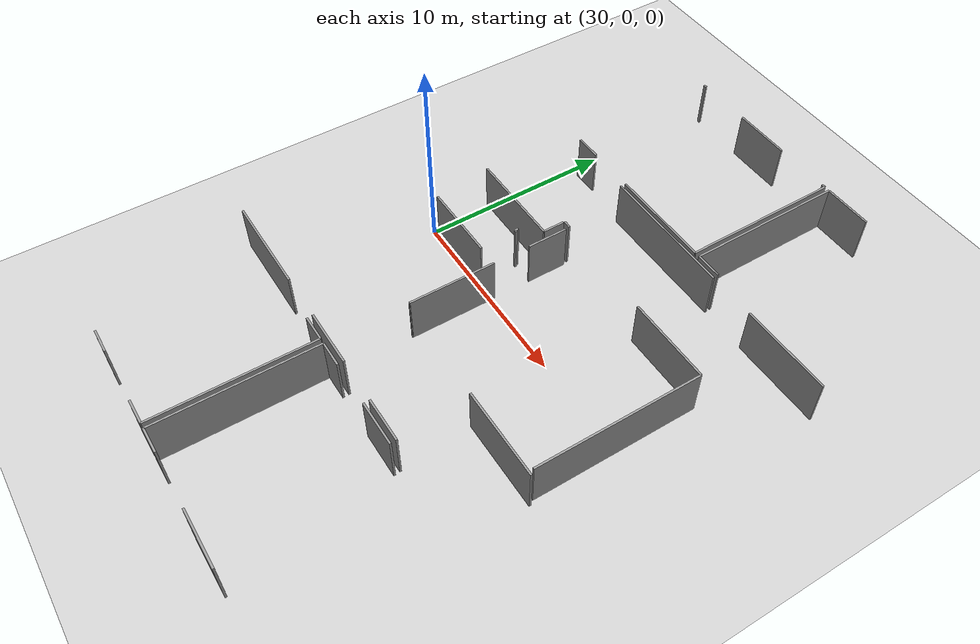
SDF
<sdf version="1.6">
 <world name="default">
  <model name="ground_plane">
   <static>1</static>
   <link name="link">
    <collision name="collision">
     <geometry><plane><normal>0 0 1</normal><size>100 100</size></plane></geometry>
     <surface><friction><ode><mu>100</mu><mu2>50</mu2></ode></friction></surface>
    </collision>
    <visual name="visual">
     <cast_shadows>0</cast_shadows>
     <geometry><plane><normal>0 0 1</normal><size>100 100</size></plane></geometry>
     <material>
      <script><uri>file://media/materials/scripts/gazebo.material</uri><name>Gazebo/Grey</name></script>
     </material>
    </visual>
   </link>
  </model>
  <model name="50041174">
   <static>1</static>
   <link name="Wall_69">
    <collision name="Wall_69_Collision">
     <geometry><box><size>1.36951002793 0.1 2.5</size></box></geometry>
     <pose>0.684755013963 0 1.25 0 0 0</pose>
    </collision>
    <visual name="Wall_69_Visual">
     <pose>0.684755013963 0 1.25 0 0 0</pose>
     <geometry><box><size>1.36951002793 0.1 2.5</size></box></geometry>
     <material>
      <script><uri>file://media/materials/scripts/gazebo.material</uri><name>Gazebo/Grey</name></script>
      <ambient>1 1 1 1</ambient>
     </material>
    </visual>
    <pose>100.085554709 -25.3128966743 0 0 0 0.0</pose>
   </link>
   <link name="Wall_70">
    <collision name="Wall_70_Collision">
     <geometry><box><size>8.2129982229 0.1 2.5</size></box></geometry>
     <pose>4.10649911145 0 1.25 0 0 0</pose>
    </collision>
    <visual name="Wall_70_Visual">
     <pose>4.10649911145 0 1.25 0 0 0</pose>
     <geometry><box><size>8.2129982229 0.1 2.5</size></box></geometry>
     <material>
      <script><uri>file://media/materials/scripts/gazebo.material</uri><name>Gazebo/Grey</name></script>
      <ambient>1 1 1 1</ambient>
     </material>
    </visual>
    <pose>101.455064737 -25.3128966743 0 0 0 -1.57079632679</pose>
   </link>
   <link name="Wall_71">
    <collision name="Wall_71_Collision">
     <geometry><box><size>1.34564610307 0.1 2.5</size></box></geometry>
     <pose>0.672823051536 0 1.25 0 0 0</pose>
    </collision>
    <visual name="Wall_71_Visual">
     <pose>0.672823051536 0 1.25 0 0 0</pose>
     <geometry><box><size>1.34564610307 0.1 2.5</size></box></geometry>
     <material>
      <script><uri>file://media/materials/scripts/gazebo.material</uri><name>Gazebo/Grey</name></script>
      <ambient>1 1 1 1</ambient>
     </material>
    </visual>
    <pose>101.455064737 -33.5258948972 0 0 0 3.14159265359</pose>
   </link>
   <link name="Wall_72">
    <collision name="Wall_72_Collision">
     <geometry><box><size>1.33060498169 0.1 2.5</size></box></geometry>
     <pose>0.665302490847 0 1.25 0 0 0</pose>
    </collision>
    <visual name="Wall_72_Visual">
     <pose>0.665302490847 0 1.25 0 0 0</pose>
     <geometry><box><size>1.33060498169 0.1 2.5</size></box></geometry>
     <material>
      <script><uri>file://media/materials/scripts/gazebo.material</uri><name>Gazebo/Grey</name></script>
      <ambient>1 1 1 1</ambient>
     </material>
    </visual>
    <pose>97.0792079208 -33.5258948972 0 0 0 3.13176660083</pose>
   </link>
   <link name="Wall_88">
    <collision name="Wall_88_Collision">
     <geometry><box><size>2.33612592028 0.1 2.5</size></box></geometry>
     <pose>1.16806296014 0 1.25 0 0 0</pose>
    </collision>
    <visual name="Wall_88_Visual">
     <pose>1.16806296014 0 1.25 0 0 0</pose>
     <geometry><box><size>2.33612592028 0.1 2.5</size></box></geometry>
     <material>
      <script><uri>file://media/materials/scripts/gazebo.material</uri><name>Gazebo/Grey</name></script>
      <ambient>1 1 1 1</ambient>
     </material>
    </visual>
    <pose>107.809850216 -25.0140898705 0 0 0 3.14159265359</pose>
   </link>
   <link name="Wall_89">
    <collision name="Wall_89_Collision">
     <geometry><box><size>3.04188880427 0.1 2.5</size></box></geometry>
     <pose>1.52094440213 0 1.25 0 0 0</pose>
    </collision>
    <visual name="Wall_89_Visual">
     <pose>1.52094440213 0 1.25 0 0 0</pose>
     <geometry><box><size>3.04188880427 0.1 2.5</size></box></geometry>
     <material>
      <script><uri>file://media/materials/scripts/gazebo.material</uri><name>Gazebo/Grey</name></script>
      <ambient>1 1 1 1</ambient>
     </material>
    </visual>
    <pose>103.110307185 -25.0140898705 0 0 0 3.14159265359</pose>
   </link>
   <link name="Wall_90">
    <collision name="Wall_90_Collision">
     <geometry><box><size>5.23305407464 0.1 2.5</size></box></geometry>
     <pose>2.61652703732 0 1.25 0 0 0</pose>
    </collision>
    <visual name="Wall_90_Visual">
     <pose>2.61652703732 0 1.25 0 0 0</pose>
     <geometry><box><size>5.23305407464 0.1 2.5</size></box></geometry>
     <material>
      <script><uri>file://media/materials/scripts/gazebo.material</uri><name>Gazebo/Grey</name></script>
      <ambient>1 1 1 1</ambient>
     </material>
    </visual>
    <pose>97.6086570195 -25.0140898705 0 0 0 3.14159265359</pose>
   </link>
   <link name="Wall_122">
    <collision name="Wall_122_Collision">
     <geometry><box><size>4.66806296014 0.1 2.5</size></box></geometry>
     <pose>2.33403148007 0 1.25 0 0 0</pose>
    </collision>
    <visual name="Wall_122_Visual">
     <pose>2.33403148007 0 1.25 0 0 0</pose>
     <geometry><box><size>4.66806296014 0.1 2.5</size></box></geometry>
     <material>
      <script><uri>file://media/materials/scripts/gazebo.material</uri><name>Gazebo/Grey</name></script>
      <ambient>1 1 1 1</ambient>
     </material>
    </visual>
    <pose>107.437801472 -21.2842091901 0 0 0 0.0</pose>
   </link>
   <link name="Wall_187">
    <collision name="Wall_187_Collision">
     <geometry><box><size>7.14204112719 0.1 2.5</size></box></geometry>
     <pose>3.57102056359 0 1.25 0 0 0</pose>
    </collision>
    <visual name="Wall_187_Visual">
     <pose>3.57102056359 0 1.25 0 0 0</pose>
     <geometry><box><size>7.14204112719 0.1 2.5</size></box></geometry>
     <material>
      <script><uri>file://media/materials/scripts/gazebo.material</uri><name>Gazebo/Grey</name></script>
      <ambient>1 1 1 1</ambient>
     </material>
    </visual>
    <pose>100.79652196 -8.49187611069 0 0 0 0.0</pose>
   </link>
   <link name="Wall_188">
    <collision name="Wall_188_Collision">
     <geometry><box><size>4.7272150292 0.1 2.5</size></box></geometry>
     <pose>2.3636075146 0 1.25 0 0 0</pose>
    </collision>
    <visual name="Wall_188_Visual">
     <pose>2.3636075146 0 1.25 0 0 0</pose>
     <geometry><box><size>4.7272150292 0.1 2.5</size></box></geometry>
     <material>
      <script><uri>file://media/materials/scripts/gazebo.material</uri><name>Gazebo/Grey</name></script>
      <ambient>1 1 1 1</ambient>
     </material>
    </visual>
    <pose>110.409875603 -8.49187611069 0 0 0 0.0</pose>
   </link>
   <link name="Wall_193">
    <collision name="Wall_193_Collision">
     <geometry><box><size>0.398832190911 0.1 2.5</size></box></geometry>
     <pose>0.199416095456 0 1.25 0 0 0</pose>
    </collision>
    <visual name="Wall_193_Visual">
     <pose>0.199416095456 0 1.25 0 0 0</pose>
     <geometry><box><size>0.398832190911 0.1 2.5</size></box></geometry>
     <material>
      <script><uri>file://media/materials/scripts/gazebo.material</uri><name>Gazebo/Grey</name></script>
      <ambient>1 1 1 1</ambient>
     </material>
    </visual>
    <pose>101.741812643 -12.2396547347 0 0 0 3.14159265359</pose>
   </link>
   <link name="Wall_219">
    <collision name="Wall_219_Collision">
     <geometry><box><size>0.187357197258 0.1 2.5</size></box></geometry>
     <pose>0.0936785986291 0 1.25 0 0 0</pose>
    </collision>
    <visual name="Wall_219_Visual">
     <pose>0.0936785986291 0 1.25 0 0 0</pose>
     <geometry><box><size>0.187357197258 0.1 2.5</size></box></geometry>
     <material>
      <script><uri>file://media/materials/scripts/gazebo.material</uri><name>Gazebo/Grey</name></script>
      <ambient>1 1 1 1</ambient>
     </material>
    </visual>
    <pose>100.536176695 -14.3790302107 0 0 0 -1.57079632679</pose>
   </link>
   <link name="Wall_220">
    <collision name="Wall_220_Collision">
     <geometry><box><size>0.125412541254 0.1 2.5</size></box></geometry>
     <pose>0.0627062706271 0 1.25 0 0 0</pose>
    </collision>
    <visual name="Wall_220_Visual">
     <pose>0.0627062706271 0 1.25 0 0 0</pose>
     <geometry><box><size>0.125412541254 0.1 2.5</size></box></geometry>
     <material>
      <script><uri>file://media/materials/scripts/gazebo.material</uri><name>Gazebo/Grey</name></script>
      <ambient>1 1 1 1</ambient>
     </material>
    </visual>
    <pose>100.536176695 -14.566387408 0 0 0 0.0</pose>
   </link>
   <link name="Wall_221">
    <collision name="Wall_221_Collision">
     <geometry><box><size>4.07540035374 0.1 2.5</size></box></geometry>
     <pose>2.03770017687 0 1.25 0 0 0</pose>
    </collision>
    <visual name="Wall_221_Visual">
     <pose>2.03770017687 0 1.25 0 0 0</pose>
     <geometry><box><size>4.07540035374 0.1 2.5</size></box></geometry>
     <material>
      <script><uri>file://media/materials/scripts/gazebo.material</uri><name>Gazebo/Grey</name></script>
      <ambient>1 1 1 1</ambient>
     </material>
    </visual>
    <pose>100.661589236 -16.5328763646 0 0 0 -3.14109430441</pose>
   </link>
   <link name="Wall_222">
    <collision name="Wall_222_Collision">
     <geometry><box><size>4.49606499111 0.1 2.5</size></box></geometry>
     <pose>2.24803249556 0 1.25 0 0 0</pose>
    </collision>
    <visual name="Wall_222_Visual">
     <pose>2.24803249556 0 1.25 0 0 0</pose>
     <geometry><box><size>4.49606499111 0.1 2.5</size></box></geometry>
     <material>
      <script><uri>file://media/materials/scripts/gazebo.material</uri><name>Gazebo/Grey</name></script>
      <ambient>1 1 1 1</ambient>
     </material>
    </visual>
    <pose>101.766438182 -21.0118050267 0 0 0 1.57079632679</pose>
   </link>
   <link name="Wall_223">
    <collision name="Wall_223_Collision">
     <geometry><box><size>2.10066006601 0.1 2.5</size></box></geometry>
     <pose>1.050330033 0 1.25 0 0 0</pose>
    </collision>
    <visual name="Wall_223_Visual">
     <pose>1.050330033 0 1.25 0 0 0</pose>
     <geometry><box><size>2.10066006601 0.1 2.5</size></box></geometry>
     <material>
      <script><uri>file://media/materials/scripts/gazebo.material</uri><name>Gazebo/Grey</name></script>
      <ambient>1 1 1 1</ambient>
     </material>
    </visual>
    <pose>101.766438182 -14.5727341965 0 0 0 1.57079632679</pose>
   </link>
   <link name="Wall_224">
    <collision name="Wall_224_Collision">
     <geometry><box><size>4.47702462554 0.1 2.5</size></box></geometry>
     <pose>2.23851231277 0 1.25 0 0 0</pose>
    </collision>
    <visual name="Wall_224_Visual">
     <pose>2.23851231277 0 1.25 0 0 0</pose>
     <geometry><box><size>4.47702462554 0.1 2.5</size></box></geometry>
     <material>
      <script><uri>file://media/materials/scripts/gazebo.material</uri><name>Gazebo/Grey</name></script>
      <ambient>1 1 1 1</ambient>
     </material>
    </visual>
    <pose>107.425742574 -12.4720741305 0 0 0 0.0</pose>
   </link>
   <link name="Wall_225">
    <collision name="Wall_225_Collision">
     <geometry><box><size>8.58212744351 0.1 2.5</size></box></geometry>
     <pose>4.29106372176 0 1.25 0 0 0</pose>
    </collision>
    <visual name="Wall_225_Visual">
     <pose>4.29106372176 0 1.25 0 0 0</pose>
     <geometry><box><size>8.58212744351 0.1 2.5</size></box></geometry>
     <material>
      <script><uri>file://media/materials/scripts/gazebo.material</uri><name>Gazebo/Grey</name></script>
      <ambient>1 1 1 1</ambient>
     </material>
    </visual>
    <pose>111.9027672 -12.4720741305 0 0 0 -1.57079632679</pose>
   </link>
   <link name="Wall_227">
    <collision name="Wall_227_Collision">
     <geometry><box><size>0.0431919360702 0.1 2.5</size></box></geometry>
     <pose>0.0215959680351 0 1.25 0 0 0</pose>
    </collision>
    <visual name="Wall_227_Visual">
     <pose>0.0215959680351 0 1.25 0 0 0</pose>
     <geometry><box><size>0.0431919360702 0.1 2.5</size></box></geometry>
     <material>
      <script><uri>file://media/materials/scripts/gazebo.material</uri><name>Gazebo/Grey</name></script>
      <ambient>1 1 1 1</ambient>
     </material>
    </visual>
    <pose>101.758187357 -21.054201574 0 0 0 1.3785880403</pose>
   </link>
   <link name="Wall_234">
    <collision name="Wall_234_Collision">
     <geometry><box><size>8.20005077431 0.1 2.5</size></box></geometry>
     <pose>4.10002538715 0 1.25 0 0 0</pose>
    </collision>
    <visual name="Wall_234_Visual">
     <pose>4.10002538715 0 1.25 0 0 0</pose>
     <geometry><box><size>8.20005077431 0.1 2.5</size></box></geometry>
     <material>
      <script><uri>file://media/materials/scripts/gazebo.material</uri><name>Gazebo/Grey</name></script>
      <ambient>1 1 1 1</ambient>
     </material>
    </visual>
    <pose>101.753490734 -33.519928916 0 0 0 1.57079632679</pose>
   </link>
   <link name="Wall_235">
    <collision name="Wall_235_Collision">
     <geometry><box><size>1.37154100025 0.1 2.5</size></box></geometry>
     <pose>0.685770500127 0 1.25 0 0 0</pose>
    </collision>
    <visual name="Wall_235_Visual">
     <pose>0.685770500127 0 1.25 0 0 0</pose>
     <geometry><box><size>1.37154100025 0.1 2.5</size></box></geometry>
     <material>
      <script><uri>file://media/materials/scripts/gazebo.material</uri><name>Gazebo/Grey</name></script>
      <ambient>1 1 1 1</ambient>
     </material>
    </visual>
    <pose>101.753490734 -25.3198781417 0 0 0 0.0</pose>
   </link>
   <link name="Wall_236">
    <collision name="Wall_236_Collision">
     <geometry><box><size>2.35427773547 0.1 2.5</size></box></geometry>
     <pose>1.17713886773 0 1.25 0 0 0</pose>
    </collision>
    <visual name="Wall_236_Visual">
     <pose>1.17713886773 0 1.25 0 0 0</pose>
     <geometry><box><size>2.35427773547 0.1 2.5</size></box></geometry>
     <material>
      <script><uri>file://media/materials/scripts/gazebo.material</uri><name>Gazebo/Grey</name></script>
      <ambient>1 1 1 1</ambient>
     </material>
    </visual>
    <pose>105.484513836 -25.3198781417 0 0 0 0.0</pose>
   </link>
   <link name="Wall_239">
    <collision name="Wall_239_Collision">
     <geometry><box><size>3.0034272658 0.1 2.5</size></box></geometry>
     <pose>1.5017136329 0 1.25 0 0 0</pose>
    </collision>
    <visual name="Wall_239_Visual">
     <pose>1.5017136329 0 1.25 0 0 0</pose>
     <geometry><box><size>3.0034272658 0.1 2.5</size></box></geometry>
     <material>
      <script><uri>file://media/materials/scripts/gazebo.material</uri><name>Gazebo/Grey</name></script>
      <ambient>1 1 1 1</ambient>
     </material>
    </visual>
    <pose>109.103706524 -33.5178979436 0 0 0 3.14159265359</pose>
   </link>
   <link name="Wall_240">
    <collision name="Wall_240_Collision">
     <geometry><box><size>1.35745264906 0.1 2.5</size></box></geometry>
     <pose>0.678726324532 0 1.25 0 0 0</pose>
    </collision>
    <visual name="Wall_240_Visual">
     <pose>0.678726324532 0 1.25 0 0 0</pose>
     <geometry><box><size>1.35745264906 0.1 2.5</size></box></geometry>
     <material>
      <script><uri>file://media/materials/scripts/gazebo.material</uri><name>Gazebo/Grey</name></script>
      <ambient>1 1 1 1</ambient>
     </material>
    </visual>
    <pose>103.110941863 -33.5178979436 0 0 0 -3.14009648863</pose>
   </link>
   <link name="Wall_313">
    <collision name="Wall_313_Collision">
     <geometry><box><size>0.164127951257 0.1 2.5</size></box></geometry>
     <pose>0.0820639756283 0 1.25 0 0 0</pose>
    </collision>
    <visual name="Wall_313_Visual">
     <pose>0.0820639756283 0 1.25 0 0 0</pose>
     <geometry><box><size>0.164127951257 0.1 2.5</size></box></geometry>
     <material>
      <script><uri>file://media/materials/scripts/gazebo.material</uri><name>Gazebo/Grey</name></script>
      <ambient>1 1 1 1</ambient>
     </material>
    </visual>
    <pose>96.9534145722 -0.00812388931201 0 0 0 0.0</pose>
   </link>
   <link name="Wall_314">
    <collision name="Wall_314_Collision">
     <geometry><box><size>3.04353896928 0.1 2.5</size></box></geometry>
     <pose>1.52176948464 0 1.25 0 0 0</pose>
    </collision>
    <visual name="Wall_314_Visual">
     <pose>1.52176948464 0 1.25 0 0 0</pose>
     <geometry><box><size>3.04353896928 0.1 2.5</size></box></geometry>
     <material>
      <script><uri>file://media/materials/scripts/gazebo.material</uri><name>Gazebo/Grey</name></script>
      <ambient>1 1 1 1</ambient>
     </material>
    </visual>
    <pose>100.074765169 -0.00812388931201 0 0 0 0.0</pose>
   </link>
   <link name="Wall_315">
    <collision name="Wall_315_Collision">
     <geometry><box><size>0.191292206144 0.1 2.5</size></box></geometry>
     <pose>0.0956461030719 0 1.25 0 0 0</pose>
    </collision>
    <visual name="Wall_315_Visual">
     <pose>0.0956461030719 0 1.25 0 0 0</pose>
     <geometry><box><size>0.191292206144 0.1 2.5</size></box></geometry>
     <material>
      <script><uri>file://media/materials/scripts/gazebo.material</uri><name>Gazebo/Grey</name></script>
      <ambient>1 1 1 1</ambient>
     </material>
    </visual>
    <pose>106.07413049 -0.00812388931201 0 0 0 0.0</pose>
   </link>
   <link name="Wall_316">
    <collision name="Wall_316_Collision">
     <geometry><box><size>8.20728611323 0.1 2.5</size></box></geometry>
     <pose>4.10364305661 0 1.25 0 0 0</pose>
    </collision>
    <visual name="Wall_316_Visual">
     <pose>4.10364305661 0 1.25 0 0 0</pose>
     <geometry><box><size>8.20728611323 0.1 2.5</size></box></geometry>
     <material>
      <script><uri>file://media/materials/scripts/gazebo.material</uri><name>Gazebo/Grey</name></script>
      <ambient>1 1 1 1</ambient>
     </material>
    </visual>
    <pose>106.265422696 -0.00812388931201 0 0 0 -1.57079632679</pose>
   </link>
   <link name="Wall_317">
    <collision name="Wall_317_Collision">
     <geometry><box><size>5.44909875603 0.1 2.5</size></box></geometry>
     <pose>2.72454937801 0 1.25 0 0 0</pose>
    </collision>
    <visual name="Wall_317_Visual">
     <pose>2.72454937801 0 1.25 0 0 0</pose>
     <geometry><box><size>5.44909875603 0.1 2.5</size></box></geometry>
     <material>
      <script><uri>file://media/materials/scripts/gazebo.material</uri><name>Gazebo/Grey</name></script>
      <ambient>1 1 1 1</ambient>
     </material>
    </visual>
    <pose>106.265422696 -8.21541000254 0 0 0 3.14159265359</pose>
   </link>
   <link name="Wall_318">
    <collision name="Wall_318_Collision">
     <geometry><box><size>1.37066138988 0.1 2.5</size></box></geometry>
     <pose>0.68533069494 0 1.25 0 0 0</pose>
    </collision>
    <visual name="Wall_318_Visual">
     <pose>0.68533069494 0 1.25 0 0 0</pose>
     <geometry><box><size>1.37066138988 0.1 2.5</size></box></geometry>
     <material>
      <script><uri>file://media/materials/scripts/gazebo.material</uri><name>Gazebo/Grey</name></script>
      <ambient>1 1 1 1</ambient>
     </material>
    </visual>
    <pose>98.3240670221 -8.21541000254 0 0 0 3.13798088934</pose>
   </link>
   <link name="Wall_319">
    <collision name="Wall_319_Collision">
     <geometry><box><size>8.19903528814 0.1 2.5</size></box></geometry>
     <pose>4.09951764407 0 1.25 0 0 0</pose>
    </collision>
    <visual name="Wall_319_Visual">
     <pose>4.09951764407 0 1.25 0 0 0</pose>
     <geometry><box><size>8.19903528814 0.1 2.5</size></box></geometry>
     <material>
      <script><uri>file://media/materials/scripts/gazebo.material</uri><name>Gazebo/Grey</name></script>
      <ambient>1 1 1 1</ambient>
     </material>
    </visual>
    <pose>106.55102818 -8.2095709571 0 0 0 1.57079632679</pose>
   </link>
   <link name="Wall_320">
    <collision name="Wall_320_Collision">
     <geometry><box><size>2.55877126174 0.1 2.5</size></box></geometry>
     <pose>1.27938563087 0 1.25 0 0 0</pose>
    </collision>
    <visual name="Wall_320_Visual">
     <pose>1.27938563087 0 1.25 0 0 0</pose>
     <geometry><box><size>2.55877126174 0.1 2.5</size></box></geometry>
     <material>
      <script><uri>file://media/materials/scripts/gazebo.material</uri><name>Gazebo/Grey</name></script>
      <ambient>1 1 1 1</ambient>
     </material>
    </visual>
    <pose>106.55102818 -0.0105356689515 0 0 0 0.0</pose>
   </link>
   <link name="Wall_324">
    <collision name="Wall_324_Collision">
     <geometry><box><size>1.35230515376 0.1 2.5</size></box></geometry>
     <pose>0.676152576881 0 1.25 0 0 0</pose>
    </collision>
    <visual name="Wall_324_Visual">
     <pose>0.676152576881 0 1.25 0 0 0</pose>
     <geometry><box><size>1.35230515376 0.1 2.5</size></box></geometry>
     <material>
      <script><uri>file://media/materials/scripts/gazebo.material</uri><name>Gazebo/Grey</name></script>
      <ambient>1 1 1 1</ambient>
     </material>
    </visual>
    <pose>107.903274943 -8.19700431582 0 0 0 -3.13229976425</pose>
   </link>
   <link name="Wall_340">
    <collision name="Wall_340_Collision">
     <geometry><box><size>1.12934755014 0.1 2.5</size></box></geometry>
     <pose>0.56467377507 0 1.25 0 0 0</pose>
    </collision>
    <visual name="Wall_340_Visual">
     <pose>0.56467377507 0 1.25 0 0 0</pose>
     <geometry><box><size>1.12934755014 0.1 2.5</size></box></geometry>
     <material>
      <script><uri>file://media/materials/scripts/gazebo.material</uri><name>Gazebo/Grey</name></script>
      <ambient>1 1 1 1</ambient>
     </material>
    </visual>
    <pose>101.328255903 -12.3112465093 0 0 0 -1.57079632679</pose>
   </link>
   <link name="Wall_341">
    <collision name="Wall_341_Collision">
     <geometry><box><size>5.11971523753 0.1 2.5</size></box></geometry>
     <pose>2.55985761877 0 1.25 0 0 0</pose>
    </collision>
    <visual name="Wall_341_Visual">
     <pose>2.55985761877 0 1.25 0 0 0</pose>
     <geometry><box><size>5.11971523753 0.1 2.5</size></box></geometry>
     <material>
      <script><uri>file://media/materials/scripts/gazebo.material</uri><name>Gazebo/Grey</name></script>
      <ambient>1 1 1 1</ambient>
     </material>
    </visual>
    <pose>101.328255903 -13.4405940594 0 0 0 3.13918767967</pose>
   </link>
   <pose>-66.5 16.7804645849 0 0 0 0</pose>
  </model>
 </world>
</sdf>
